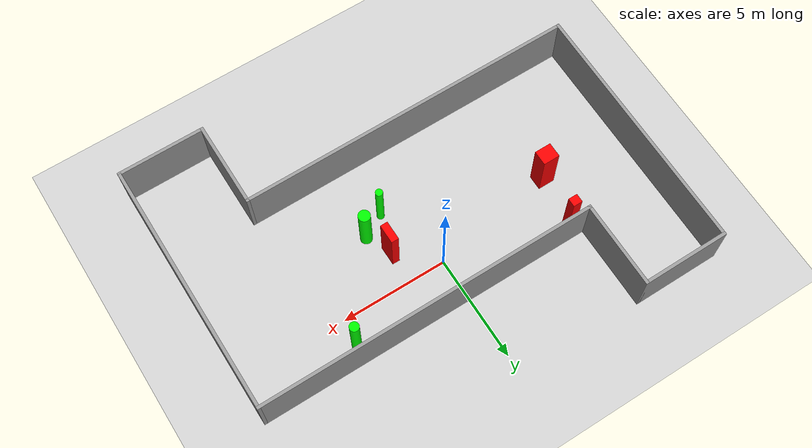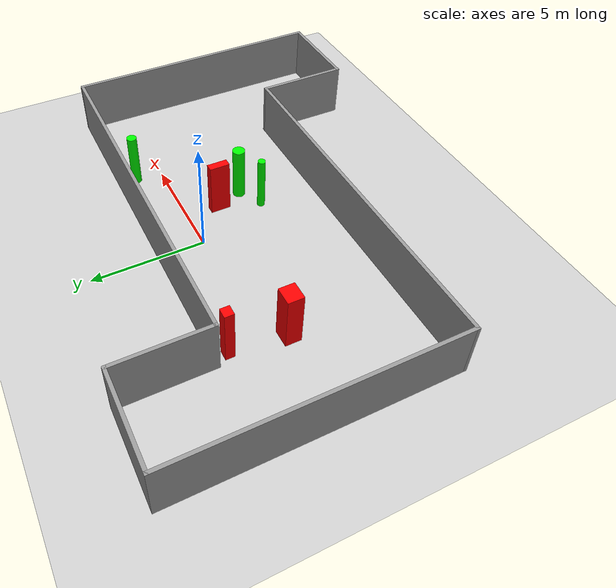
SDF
<sdf version="1.7">
 <world name="default">
  <light name="sun" type="directional">
   <pose>0 0 10 0 -0 0</pose>
   <diffuse>0.8 0.8 0.8 1</diffuse>
   <specular>0.2 0.2 0.2 1</specular>
   <attenuation>
    <range>1000</range>
    <constant>0.9</constant>
    <linear>0.01</linear>
    <quadratic>0.001</quadratic>
   </attenuation>
   <direction>-0.5 0.1 -0.9</direction>
   <spot><inner_angle>0</inner_angle><outer_angle>0</outer_angle><falloff>0</falloff></spot>
  </light>
  <model name="ground_plane">
   <static>1</static>
   <link name="link">
    <collision name="collision">
     <geometry><plane><normal>0 0 1</normal><size>100 100</size></plane></geometry>
     <surface>
      <contact><collide_bitmask>65535</collide_bitmask></contact>
      <friction><ode><mu>100</mu><mu2>50</mu2></ode></friction>
     </surface>
    </collision>
    <visual name="visual">
     <cast_shadows>0</cast_shadows>
     <geometry><plane><normal>0 0 1</normal><size>100 100</size></plane></geometry>
     <material>
      <script><uri>file://media/materials/scripts/gazebo.material</uri><name>Gazebo/Grey</name></script>
     </material>
    </visual>
   </link>
  </model>
  <gravity>0 0 -9.8</gravity>
  <magnetic_field>6e-06 2.3e-05 -4.2e-05</magnetic_field>
  <atmosphere type="adiabatic"/>
  <physics type="ode">
   <max_step_size>0.001</max_step_size>
   <real_time_factor>1</real_time_factor>
   <real_time_update_rate>1000</real_time_update_rate>
  </physics>
  <scene><ambient>0.4 0.4 0.4 1</ambient><background>0.7 0.7 0.7 1</background><shadows>1</shadows></scene>
  <spherical_coordinates>
   <surface_model>EARTH_WGS84</surface_model>
   <latitude_deg>0</latitude_deg>
   <longitude_deg>0</longitude_deg>
   <elevation>0</elevation>
   <heading_deg>0</heading_deg>
  </spherical_coordinates>
  <model name="my_base_walls">
   <link name="Wall_13">
    <collision name="Wall_13_Collision">
     <geometry><box><size>12.15 0.15 2.5</size></box></geometry>
     <pose>0 0 1.25 0 -0 0</pose>
    </collision>
    <visual name="Wall_13_Visual">
     <pose>0 0 1.25 0 -0 0</pose>
     <geometry><box><size>12.15 0.15 2.5</size></box></geometry>
     <material>
      <script><uri>file://media/materials/scripts/gazebo.material</uri><name>Gazebo/Grey</name></script>
      <ambient>1 1 1 1</ambient>
     </material>
     <meta><layer>0</layer></meta>
    </visual>
    <pose>10 -2 0 0 -0 1.5708</pose>
   </link>
   <link name="Wall_15">
    <collision name="Wall_15_Collision">
     <geometry><box><size>16.15 0.15 2.5</size></box></geometry>
     <pose>0 0 1.25 0 -0 0</pose>
    </collision>
    <visual name="Wall_15_Visual">
     <pose>0 0 1.25 0 -0 0</pose>
     <geometry><box><size>16.15 0.15 2.5</size></box></geometry>
     <material>
      <script><uri>file://media/materials/scripts/gazebo.material</uri><name>Gazebo/Grey</name></script>
      <ambient>1 1 1 1</ambient>
     </material>
     <meta><layer>0</layer></meta>
    </visual>
    <pose>2 4 0 0 -0 3.14159</pose>
   </link>
   <link name="Wall_17">
    <collision name="Wall_17_Collision">
     <geometry><box><size>4.15 0.15 2.5</size></box></geometry>
     <pose>0 0 1.25 0 -0 0</pose>
    </collision>
    <visual name="Wall_17_Visual">
     <pose>0 0 1.25 0 -0 0</pose>
     <geometry><box><size>4.15 0.15 2.5</size></box></geometry>
     <material>
      <script><uri>file://media/materials/scripts/gazebo.material</uri><name>Gazebo/Grey</name></script>
      <ambient>1 1 1 1</ambient>
     </material>
     <meta><layer>0</layer></meta>
    </visual>
    <pose>6 -6 0 0 -0 -1.5708</pose>
   </link>
   <link name="Wall_19">
    <collision name="Wall_19_Collision">
     <geometry><box><size>12.15 0.15 2.5</size></box></geometry>
     <pose>0 0 1.25 0 -0 0</pose>
    </collision>
    <visual name="Wall_19_Visual">
     <pose>0 0 1.25 0 -0 0</pose>
     <geometry><box><size>12.15 0.15 2.5</size></box></geometry>
     <material>
      <script><uri>file://media/materials/scripts/gazebo.material</uri><name>Gazebo/Grey</name></script>
      <ambient>1 1 1 1</ambient>
     </material>
     <meta><layer>0</layer></meta>
    </visual>
    <pose>-10 2 0 0 -0 1.5708</pose>
   </link>
   <link name="Wall_21">
    <collision name="Wall_21_Collision">
     <geometry><box><size>4.15 0.15 2.5</size></box></geometry>
     <pose>0 0 1.25 0 -0 0</pose>
    </collision>
    <visual name="Wall_21_Visual">
     <pose>0 0 1.25 0 -0 0</pose>
     <geometry><box><size>4.15 0.15 2.5</size></box></geometry>
     <material>
      <script><uri>file://media/materials/scripts/gazebo.material</uri><name>Gazebo/Grey</name></script>
      <ambient>1 1 1 1</ambient>
     </material>
     <meta><layer>0</layer></meta>
    </visual>
    <pose>-8 8 0 0 -0 0</pose>
   </link>
   <link name="Wall_23">
    <collision name="Wall_23_Collision">
     <geometry><box><size>4.15 0.15 2.5</size></box></geometry>
     <pose>0 0 1.25 0 -0 0</pose>
    </collision>
    <visual name="Wall_23_Visual">
     <pose>0 0 1.25 0 -0 0</pose>
     <geometry><box><size>4.15 0.15 2.5</size></box></geometry>
     <material>
      <script><uri>file://media/materials/scripts/gazebo.material</uri><name>Gazebo/Grey</name></script>
      <ambient>1 1 1 1</ambient>
     </material>
     <meta><layer>0</layer></meta>
    </visual>
    <pose>-6 6 0 0 -0 -1.5708</pose>
   </link>
   <link name="Wall_25">
    <collision name="Wall_25_Collision">
     <geometry><box><size>4.15 0.15 2.5</size></box></geometry>
     <pose>0 0 1.25 0 -0 0</pose>
    </collision>
    <visual name="Wall_25_Visual">
     <pose>0 0 1.25 0 -0 0</pose>
     <geometry><box><size>4.15 0.15 2.5</size></box></geometry>
     <material>
      <script><uri>file://media/materials/scripts/gazebo.material</uri><name>Gazebo/Grey</name></script>
      <ambient>1 1 1 1</ambient>
     </material>
     <meta><layer>0</layer></meta>
    </visual>
    <pose>8 -8 0 0 -0 0</pose>
   </link>
   <link name="Wall_9">
    <collision name="Wall_9_Collision">
     <geometry><box><size>16.15 0.15 2.5</size></box></geometry>
     <pose>0 0 1.25 0 -0 0</pose>
    </collision>
    <visual name="Wall_9_Visual">
     <pose>0 0 1.25 0 -0 0</pose>
     <geometry><box><size>16.15 0.15 2.5</size></box></geometry>
     <material>
      <script><uri>file://media/materials/scripts/gazebo.material</uri><name>Gazebo/Grey</name></script>
      <ambient>1 1 1 1</ambient>
     </material>
     <meta><layer>0</layer></meta>
    </visual>
    <pose>-2 -4 0 0 -0 3.14159</pose>
   </link>
   <static>1</static>
   <pose>-0 -2 0 0 -0 0</pose>
  </model>
  <model name="cylinder1">
   <static>1</static>
   <link name="link">
    <inertial>
     <mass>1</mass>
     <inertia><ixx>0.5</ixx><ixy>0</ixy><ixz>0</ixz><iyy>0.5</iyy><iyz>0</iyz><izz>1</izz></inertia>
    </inertial>
    <collision name="collision">
     <geometry><cylinder><radius>0.2763072125007509</radius><length>2.5</length></cylinder></geometry>
    </collision>
    <visual name="visual">
     <geometry><cylinder><radius>0.2763072125007509</radius><length>2.5</length></cylinder></geometry>
     <material>
      <ambient>0 1 0 1</ambient>
      <diffuse>0 1 0 1</diffuse>
      <specular>0.1 0.1 0.1 1</specular>
      <emissive>0 0 0 0</emissive>
     </material>
    </visual>
   </link>
   <pose>2.224066867290137 -2.741865707871397 1.25 0 0 0</pose>
  </model>
  <model name="cylinder2">
   <static>1</static>
   <link name="link">
    <inertial>
     <mass>1</mass>
     <inertia><ixx>0.5</ixx><ixy>0</ixy><ixz>0</ixz><iyy>0.5</iyy><iyz>0</iyz><izz>1</izz></inertia>
    </inertial>
    <collision name="collision">
     <geometry><cylinder><radius>0.171962270415177</radius><length>2.5</length></cylinder></geometry>
    </collision>
    <visual name="visual">
     <geometry><cylinder><radius>0.171962270415177</radius><length>2.5</length></cylinder></geometry>
     <material>
      <ambient>0 1 0 1</ambient>
      <diffuse>0 1 0 1</diffuse>
      <specular>0.1 0.1 0.1 1</specular>
      <emissive>0 0 0 0</emissive>
     </material>
    </visual>
   </link>
   <pose>1.134438333258533 -3.321682116434891 1.25 0 0 0</pose>
  </model>
  <model name="cylinder3">
   <static>1</static>
   <link name="link">
    <inertial>
     <mass>1</mass>
     <inertia><ixx>0.5</ixx><ixy>0</ixy><ixz>0</ixz><iyy>0.5</iyy><iyz>0</iyz><izz>1</izz></inertia>
    </inertial>
    <collision name="collision">
     <geometry><cylinder><radius>0.22186297050323653</radius><length>2.5</length></cylinder></geometry>
    </collision>
    <visual name="visual">
     <geometry><cylinder><radius>0.22186297050323653</radius><length>2.5</length></cylinder></geometry>
     <material>
      <ambient>0 1 0 1</ambient>
      <diffuse>0 1 0 1</diffuse>
      <specular>0.1 0.1 0.1 1</specular>
      <emissive>0 0 0 0</emissive>
     </material>
    </visual>
   </link>
   <pose>5.10519451202606 1.192581850136225 1.25 0 0 0</pose>
  </model>
  <model name="box1">
   <static>1</static>
   <link name="link">
    <inertial>
     <mass>1</mass>
     <inertia><ixx>0.083</ixx><ixy>0</ixy><ixz>0</ixz><iyy>0.083</iyy><iyz>0</iyz><izz>0.083</izz></inertia>
    </inertial>
    <collision name="collision">
     <geometry><box><size>0.7769786205463285 0.694409741386051 2.5</size></box></geometry>
    </collision>
    <visual name="visual">
     <geometry><box><size>0.7769786205463285 0.694409741386051 2.5</size></box></geometry>
     <material>
      <ambient>1 0 0 1</ambient>
      <diffuse>1 0 0 1</diffuse>
      <specular>0.1 0.1 0.1 1</specular>
      <emissive>0 0 0 0</emissive>
     </material>
    </visual>
    <sensor name="my_contact" type="contact">
     <contact><collision>box_collision</collision><topic>__default_topic__</topic></contact>
    </sensor>
   </link>
   <pose>-5.895560046010958 -0.9858291076846699 1.25 0 0 0</pose>
  </model>
  <model name="box2">
   <static>1</static>
   <link name="link">
    <inertial>
     <mass>1</mass>
     <inertia><ixx>0.083</ixx><ixy>0</ixy><ixz>0</ixz><iyy>0.083</iyy><iyz>0</iyz><izz>0.083</izz></inertia>
    </inertial>
    <collision name="collision">
     <geometry><box><size>0.34941389175874815 0.8981681599008873 2.5</size></box></geometry>
    </collision>
    <visual name="visual">
     <geometry><box><size>0.34941389175874815 0.8981681599008873 2.5</size></box></geometry>
     <material>
      <ambient>1 0 0 1</ambient>
      <diffuse>1 0 0 1</diffuse>
      <specular>0.1 0.1 0.1 1</specular>
      <emissive>0 0 0 0</emissive>
     </material>
    </visual>
    <sensor name="my_contact" type="contact">
     <contact><collision>box_collision</collision><topic>__default_topic__</topic></contact>
    </sensor>
   </link>
   <pose>1.7256247893900234 -1.539411712190745 1.25 0 0 0</pose>
  </model>
  <model name="box3">
   <static>1</static>
   <link name="link">
    <inertial>
     <mass>1</mass>
     <inertia><ixx>0.083</ixx><ixy>0</ixy><ixz>0</ixz><iyy>0.083</iyy><iyz>0</iyz><izz>0.083</izz></inertia>
    </inertial>
    <collision name="collision">
     <geometry><box><size>0.4362732352288536 0.4032459546759574 2.5</size></box></geometry>
    </collision>
    <visual name="visual">
     <geometry><box><size>0.4362732352288536 0.4032459546759574 2.5</size></box></geometry>
     <material>
      <ambient>1 0 0 1</ambient>
      <diffuse>1 0 0 1</diffuse>
      <specular>0.1 0.1 0.1 1</specular>
      <emissive>0 0 0 0</emissive>
     </material>
    </visual>
    <sensor name="my_contact" type="contact">
     <contact><collision>box_collision</collision><topic>__default_topic__</topic></contact>
    </sensor>
   </link>
   <pose>-5.653692409420919 1.434592014208202 1.25 0 0 0</pose>
  </model>
 </world>
</sdf>
